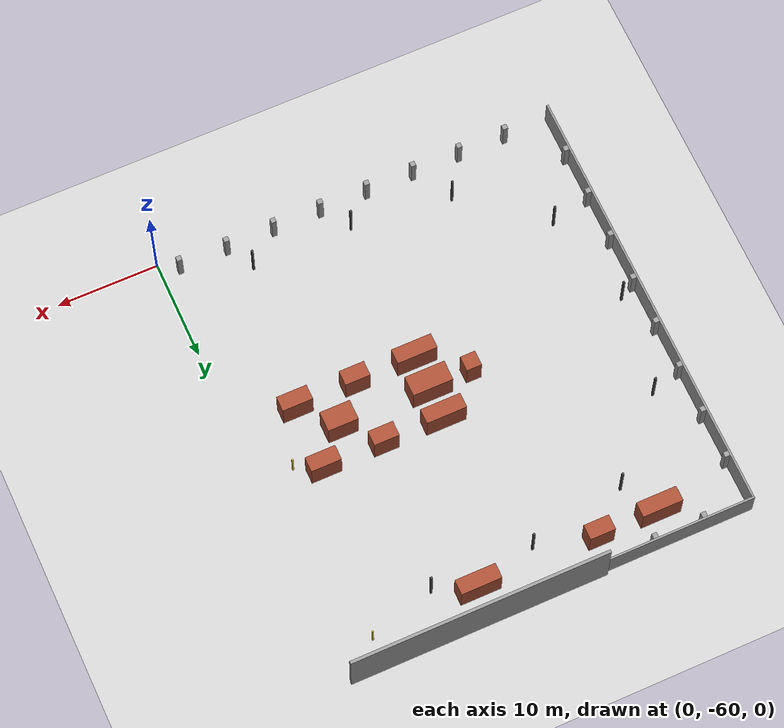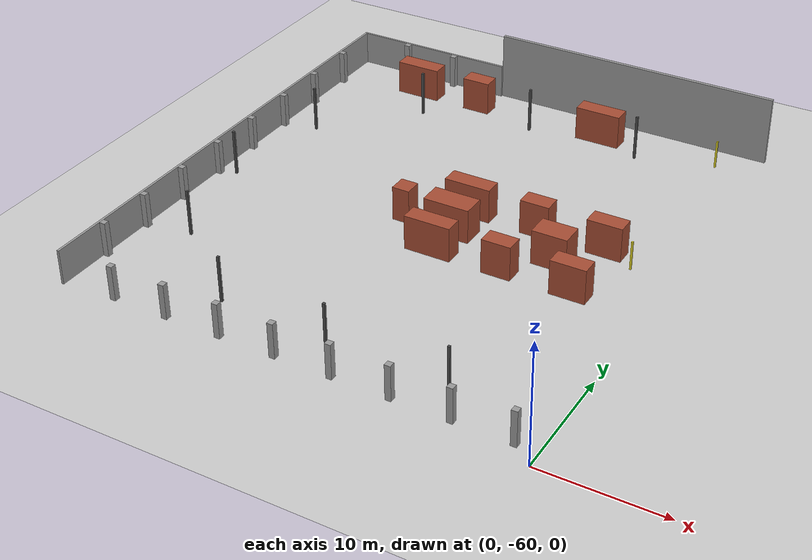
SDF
<sdf version="1.6">
 <world name="default">
  <include><uri>model://ground_plane</uri></include>
  <include><uri>model://sun</uri></include>
  <model name="wall_s_0">
   <static>true</static>
   <pose>-12.6500 -15.1500 3.0000 0.000000 0.000000 0.000000</pose>
   <link name="link">
    <collision name="c"><geometry><box><size>25.3000 0.3000 6.0000</size></box></geometry></collision>
    <visual name="v">
     <geometry><box><size>25.3000 0.3000 6.0000</size></box></geometry>
     <material>
      <script><uri>file://media/materials/scripts/gazebo.material</uri><name>Gazebo/Grey</name></script>
     </material>
    </visual>
   </link>
  </model>
  <model name="fence_w">
   <static>true</static>
   <pose>-39.9000 -37.1500 1.5000 0.000000 0.000000 0.000000</pose>
   <link name="link">
    <collision name="c"><geometry><box><size>0.2000 43.7000 3.0000</size></box></geometry></collision>
    <visual name="v">
     <geometry><box><size>0.2000 43.7000 3.0000</size></box></geometry>
     <material>
      <script><uri>file://media/materials/scripts/gazebo.material</uri><name>Gazebo/Grey</name></script>
     </material>
    </visual>
   </link>
  </model>
  <model name="fence_n_w">
   <static>true</static>
   <pose>-32.6500 -15.4000 1.5000 0.000000 0.000000 0.000000</pose>
   <link name="link">
    <collision name="c"><geometry><box><size>14.7000 0.2000 3.0000</size></box></geometry></collision>
    <visual name="v">
     <geometry><box><size>14.7000 0.2000 3.0000</size></box></geometry>
     <material>
      <script><uri>file://media/materials/scripts/gazebo.material</uri><name>Gazebo/Grey</name></script>
     </material>
    </visual>
   </link>
  </model>
  <model name="fence_post_0">
   <static>true</static>
   <pose>-35.2222 -58.5500 1.5000 0.000000 0.000000 0.000000</pose>
   <link name="link">
    <collision name="c"><geometry><box><size>0.5000 0.5000 3.0000</size></box></geometry></collision>
    <visual name="v">
     <geometry><box><size>0.5000 0.5000 3.0000</size></box></geometry>
     <material>
      <script><uri>file://media/materials/scripts/gazebo.material</uri><name>Gazebo/Grey</name></script>
     </material>
    </visual>
   </link>
  </model>
  <model name="fence_post_1">
   <static>true</static>
   <pose>-30.4444 -58.5500 1.5000 0.000000 0.000000 0.000000</pose>
   <link name="link">
    <collision name="c"><geometry><box><size>0.5000 0.5000 3.0000</size></box></geometry></collision>
    <visual name="v">
     <geometry><box><size>0.5000 0.5000 3.0000</size></box></geometry>
     <material>
      <script><uri>file://media/materials/scripts/gazebo.material</uri><name>Gazebo/Grey</name></script>
     </material>
    </visual>
   </link>
  </model>
  <model name="fence_post_2">
   <static>true</static>
   <pose>-25.6667 -58.5500 1.5000 0.000000 0.000000 0.000000</pose>
   <link name="link">
    <collision name="c"><geometry><box><size>0.5000 0.5000 3.0000</size></box></geometry></collision>
    <visual name="v">
     <geometry><box><size>0.5000 0.5000 3.0000</size></box></geometry>
     <material>
      <script><uri>file://media/materials/scripts/gazebo.material</uri><name>Gazebo/Grey</name></script>
     </material>
    </visual>
   </link>
  </model>
  <model name="fence_post_3">
   <static>true</static>
   <pose>-20.8889 -58.5500 1.5000 0.000000 0.000000 0.000000</pose>
   <link name="link">
    <collision name="c"><geometry><box><size>0.5000 0.5000 3.0000</size></box></geometry></collision>
    <visual name="v">
     <geometry><box><size>0.5000 0.5000 3.0000</size></box></geometry>
     <material>
      <script><uri>file://media/materials/scripts/gazebo.material</uri><name>Gazebo/Grey</name></script>
     </material>
    </visual>
   </link>
  </model>
  <model name="fence_post_4">
   <static>true</static>
   <pose>-16.1111 -58.5500 1.5000 0.000000 0.000000 0.000000</pose>
   <link name="link">
    <collision name="c"><geometry><box><size>0.5000 0.5000 3.0000</size></box></geometry></collision>
    <visual name="v">
     <geometry><box><size>0.5000 0.5000 3.0000</size></box></geometry>
     <material>
      <script><uri>file://media/materials/scripts/gazebo.material</uri><name>Gazebo/Grey</name></script>
     </material>
    </visual>
   </link>
  </model>
  <model name="fence_post_5">
   <static>true</static>
   <pose>-11.3333 -58.5500 1.5000 0.000000 0.000000 0.000000</pose>
   <link name="link">
    <collision name="c"><geometry><box><size>0.5000 0.5000 3.0000</size></box></geometry></collision>
    <visual name="v">
     <geometry><box><size>0.5000 0.5000 3.0000</size></box></geometry>
     <material>
      <script><uri>file://media/materials/scripts/gazebo.material</uri><name>Gazebo/Grey</name></script>
     </material>
    </visual>
   </link>
  </model>
  <model name="fence_post_6">
   <static>true</static>
   <pose>-6.5556 -58.5500 1.5000 0.000000 0.000000 0.000000</pose>
   <link name="link">
    <collision name="c"><geometry><box><size>0.5000 0.5000 3.0000</size></box></geometry></collision>
    <visual name="v">
     <geometry><box><size>0.5000 0.5000 3.0000</size></box></geometry>
     <material>
      <script><uri>file://media/materials/scripts/gazebo.material</uri><name>Gazebo/Grey</name></script>
     </material>
    </visual>
   </link>
  </model>
  <model name="fence_post_7">
   <static>true</static>
   <pose>-1.7778 -58.5500 1.5000 0.000000 0.000000 0.000000</pose>
   <link name="link">
    <collision name="c"><geometry><box><size>0.5000 0.5000 3.0000</size></box></geometry></collision>
    <visual name="v">
     <geometry><box><size>0.5000 0.5000 3.0000</size></box></geometry>
     <material>
      <script><uri>file://media/materials/scripts/gazebo.material</uri><name>Gazebo/Grey</name></script>
     </material>
    </visual>
   </link>
  </model>
  <model name="fence_post_17">
   <static>true</static>
   <pose>-39.5500 -54.1444 1.5000 0.000000 0.000000 0.000000</pose>
   <link name="link">
    <collision name="c"><geometry><box><size>0.5000 0.5000 3.0000</size></box></geometry></collision>
    <visual name="v">
     <geometry><box><size>0.5000 0.5000 3.0000</size></box></geometry>
     <material>
      <script><uri>file://media/materials/scripts/gazebo.material</uri><name>Gazebo/Grey</name></script>
     </material>
    </visual>
   </link>
  </model>
  <model name="fence_post_18">
   <static>true</static>
   <pose>-39.5500 -49.2889 1.5000 0.000000 0.000000 0.000000</pose>
   <link name="link">
    <collision name="c"><geometry><box><size>0.5000 0.5000 3.0000</size></box></geometry></collision>
    <visual name="v">
     <geometry><box><size>0.5000 0.5000 3.0000</size></box></geometry>
     <material>
      <script><uri>file://media/materials/scripts/gazebo.material</uri><name>Gazebo/Grey</name></script>
     </material>
    </visual>
   </link>
  </model>
  <model name="fence_post_19">
   <static>true</static>
   <pose>-39.5500 -44.4333 1.5000 0.000000 0.000000 0.000000</pose>
   <link name="link">
    <collision name="c"><geometry><box><size>0.5000 0.5000 3.0000</size></box></geometry></collision>
    <visual name="v">
     <geometry><box><size>0.5000 0.5000 3.0000</size></box></geometry>
     <material>
      <script><uri>file://media/materials/scripts/gazebo.material</uri><name>Gazebo/Grey</name></script>
     </material>
    </visual>
   </link>
  </model>
  <model name="fence_post_20">
   <static>true</static>
   <pose>-39.5500 -39.5778 1.5000 0.000000 0.000000 0.000000</pose>
   <link name="link">
    <collision name="c"><geometry><box><size>0.5000 0.5000 3.0000</size></box></geometry></collision>
    <visual name="v">
     <geometry><box><size>0.5000 0.5000 3.0000</size></box></geometry>
     <material>
      <script><uri>file://media/materials/scripts/gazebo.material</uri><name>Gazebo/Grey</name></script>
     </material>
    </visual>
   </link>
  </model>
  <model name="fence_post_21">
   <static>true</static>
   <pose>-39.5500 -34.7222 1.5000 0.000000 0.000000 0.000000</pose>
   <link name="link">
    <collision name="c"><geometry><box><size>0.5000 0.5000 3.0000</size></box></geometry></collision>
    <visual name="v">
     <geometry><box><size>0.5000 0.5000 3.0000</size></box></geometry>
     <material>
      <script><uri>file://media/materials/scripts/gazebo.material</uri><name>Gazebo/Grey</name></script>
     </material>
    </visual>
   </link>
  </model>
  <model name="fence_post_22">
   <static>true</static>
   <pose>-39.5500 -29.8667 1.5000 0.000000 0.000000 0.000000</pose>
   <link name="link">
    <collision name="c"><geometry><box><size>0.5000 0.5000 3.0000</size></box></geometry></collision>
    <visual name="v">
     <geometry><box><size>0.5000 0.5000 3.0000</size></box></geometry>
     <material>
      <script><uri>file://media/materials/scripts/gazebo.material</uri><name>Gazebo/Grey</name></script>
     </material>
    </visual>
   </link>
  </model>
  <model name="fence_post_23">
   <static>true</static>
   <pose>-39.5500 -25.0111 1.5000 0.000000 0.000000 0.000000</pose>
   <link name="link">
    <collision name="c"><geometry><box><size>0.5000 0.5000 3.0000</size></box></geometry></collision>
    <visual name="v">
     <geometry><box><size>0.5000 0.5000 3.0000</size></box></geometry>
     <material>
      <script><uri>file://media/materials/scripts/gazebo.material</uri><name>Gazebo/Grey</name></script>
     </material>
    </visual>
   </link>
  </model>
  <model name="fence_post_24">
   <static>true</static>
   <pose>-39.5500 -20.1556 1.5000 0.000000 0.000000 0.000000</pose>
   <link name="link">
    <collision name="c"><geometry><box><size>0.5000 0.5000 3.0000</size></box></geometry></collision>
    <visual name="v">
     <geometry><box><size>0.5000 0.5000 3.0000</size></box></geometry>
     <material>
      <script><uri>file://media/materials/scripts/gazebo.material</uri><name>Gazebo/Grey</name></script>
     </material>
    </visual>
   </link>
  </model>
  <model name="fence_post_33">
   <static>true</static>
   <pose>-35.1000 -15.7500 1.5000 0.000000 0.000000 0.000000</pose>
   <link name="link">
    <collision name="c"><geometry><box><size>0.5000 0.5000 3.0000</size></box></geometry></collision>
    <visual name="v">
     <geometry><box><size>0.5000 0.5000 3.0000</size></box></geometry>
     <material>
      <script><uri>file://media/materials/scripts/gazebo.material</uri><name>Gazebo/Grey</name></script>
     </material>
    </visual>
   </link>
  </model>
  <model name="fence_post_34">
   <static>true</static>
   <pose>-30.2000 -15.7500 1.5000 0.000000 0.000000 0.000000</pose>
   <link name="link">
    <collision name="c"><geometry><box><size>0.5000 0.5000 3.0000</size></box></geometry></collision>
    <visual name="v">
     <geometry><box><size>0.5000 0.5000 3.0000</size></box></geometry>
     <material>
      <script><uri>file://media/materials/scripts/gazebo.material</uri><name>Gazebo/Grey</name></script>
     </material>
    </visual>
   </link>
  </model>
  <model name="lamp_9">
   <static>true</static>
   <pose>-8.1500 -56.0000 2.0000 0.000000 0.000000 0.000000</pose>
   <link name="link">
    <collision name="c"><geometry><box><size>0.2000 0.2000 4.0000</size></box></geometry></collision>
    <visual name="v">
     <geometry><box><size>0.2000 0.2000 4.0000</size></box></geometry>
     <material>
      <script><uri>file://media/materials/scripts/gazebo.material</uri><name>Gazebo/DarkGrey</name></script>
     </material>
    </visual>
   </link>
  </model>
  <model name="lamp_10">
   <static>true</static>
   <pose>-18.1500 -56.0000 2.0000 0.000000 0.000000 0.000000</pose>
   <link name="link">
    <collision name="c"><geometry><box><size>0.2000 0.2000 4.0000</size></box></geometry></collision>
    <visual name="v">
     <geometry><box><size>0.2000 0.2000 4.0000</size></box></geometry>
     <material>
      <script><uri>file://media/materials/scripts/gazebo.material</uri><name>Gazebo/DarkGrey</name></script>
     </material>
    </visual>
   </link>
  </model>
  <model name="lamp_11">
   <static>true</static>
   <pose>-28.0955 -54.8940 2.0000 0.000000 0.000000 0.000000</pose>
   <link name="link">
    <collision name="c"><geometry><box><size>0.2000 0.2000 4.0000</size></box></geometry></collision>
    <visual name="v">
     <geometry><box><size>0.2000 0.2000 4.0000</size></box></geometry>
     <material>
      <script><uri>file://media/materials/scripts/gazebo.material</uri><name>Gazebo/DarkGrey</name></script>
     </material>
    </visual>
   </link>
  </model>
  <model name="lamp_12">
   <static>true</static>
   <pose>-35.7443 -48.5968 2.0000 0.000000 0.000000 0.000000</pose>
   <link name="link">
    <collision name="c"><geometry><box><size>0.2000 0.2000 4.0000</size></box></geometry></collision>
    <visual name="v">
     <geometry><box><size>0.2000 0.2000 4.0000</size></box></geometry>
     <material>
      <script><uri>file://media/materials/scripts/gazebo.material</uri><name>Gazebo/DarkGrey</name></script>
     </material>
    </visual>
   </link>
  </model>
  <model name="lamp_13">
   <static>true</static>
   <pose>-38.2500 -39.0000 2.0000 0.000000 0.000000 0.000000</pose>
   <link name="link">
    <collision name="c"><geometry><box><size>0.2000 0.2000 4.0000</size></box></geometry></collision>
    <visual name="v">
     <geometry><box><size>0.2000 0.2000 4.0000</size></box></geometry>
     <material>
      <script><uri>file://media/materials/scripts/gazebo.material</uri><name>Gazebo/DarkGrey</name></script>
     </material>
    </visual>
   </link>
  </model>
  <model name="lamp_14">
   <static>true</static>
   <pose>-36.7085 -29.1479 2.0000 0.000000 0.000000 0.000000</pose>
   <link name="link">
    <collision name="c"><geometry><box><size>0.2000 0.2000 4.0000</size></box></geometry></collision>
    <visual name="v">
     <geometry><box><size>0.2000 0.2000 4.0000</size></box></geometry>
     <material>
      <script><uri>file://media/materials/scripts/gazebo.material</uri><name>Gazebo/DarkGrey</name></script>
     </material>
    </visual>
   </link>
  </model>
  <model name="lamp_15">
   <static>true</static>
   <pose>-29.9021 -21.9485 2.0000 0.000000 0.000000 0.000000</pose>
   <link name="link">
    <collision name="c"><geometry><box><size>0.2000 0.2000 4.0000</size></box></geometry></collision>
    <visual name="v">
     <geometry><box><size>0.2000 0.2000 4.0000</size></box></geometry>
     <material>
      <script><uri>file://media/materials/scripts/gazebo.material</uri><name>Gazebo/DarkGrey</name></script>
     </material>
    </visual>
   </link>
  </model>
  <model name="lamp_16">
   <static>true</static>
   <pose>-20.1500 -20.0000 2.0000 0.000000 0.000000 0.000000</pose>
   <link name="link">
    <collision name="c"><geometry><box><size>0.2000 0.2000 4.0000</size></box></geometry></collision>
    <visual name="v">
     <geometry><box><size>0.2000 0.2000 4.0000</size></box></geometry>
     <material>
      <script><uri>file://media/materials/scripts/gazebo.material</uri><name>Gazebo/DarkGrey</name></script>
     </material>
    </visual>
   </link>
  </model>
  <model name="lamp_17">
   <static>true</static>
   <pose>-10.0500 -20.0000 2.0000 0.000000 0.000000 0.000000</pose>
   <link name="link">
    <collision name="c"><geometry><box><size>0.2000 0.2000 4.0000</size></box></geometry></collision>
    <visual name="v">
     <geometry><box><size>0.2000 0.2000 4.0000</size></box></geometry>
     <material>
      <script><uri>file://media/materials/scripts/gazebo.material</uri><name>Gazebo/DarkGrey</name></script>
     </material>
    </visual>
   </link>
  </model>
  <model name="signal_1">
   <static>true</static>
   <pose>-3.4500 -18.0500 1.2500 0.000000 0.000000 0.000000</pose>
   <link name="link">
    <collision name="c"><geometry><box><size>0.1500 0.1500 2.5000</size></box></geometry></collision>
    <visual name="v">
     <geometry><box><size>0.1500 0.1500 2.5000</size></box></geometry>
     <material>
      <script><uri>file://media/materials/scripts/gazebo.material</uri><name>Gazebo/Yellow</name></script>
     </material>
    </visual>
   </link>
  </model>
  <model name="signal_2">
   <static>true</static>
   <pose>-3.4500 -35.9500 1.2500 0.000000 0.000000 0.000000</pose>
   <link name="link">
    <collision name="c"><geometry><box><size>0.1500 0.1500 2.5000</size></box></geometry></collision>
    <visual name="v">
     <geometry><box><size>0.1500 0.1500 2.5000</size></box></geometry>
     <material>
      <script><uri>file://media/materials/scripts/gazebo.material</uri><name>Gazebo/Yellow</name></script>
     </material>
    </visual>
   </link>
  </model>
  <model name="building_0">
   <static>true</static>
   <pose>-22.2500 -38.0000 1.5000 0.000000 0.000000 0.000000</pose>
   <link name="link">
    <collision name="c"><geometry><box><size>1.5000 1.5000 3.0000</size></box></geometry></collision>
    <visual name="v">
     <geometry><box><size>1.5000 1.5000 3.0000</size></box></geometry>
     <material>
      <script><uri>file://media/materials/scripts/gazebo.material</uri><name>Gazebo/Bricks</name></script>
     </material>
    </visual>
   </link>
  </model>
  <model name="building_1">
   <static>true</static>
   <pose>-18.0000 -38.0000 1.5000 0.000000 0.000000 0.000000</pose>
   <link name="link">
    <collision name="c"><geometry><box><size>4.0000 2.0000 3.0000</size></box></geometry></collision>
    <visual name="v">
     <geometry><box><size>4.0000 2.0000 3.0000</size></box></geometry>
     <material>
      <script><uri>file://media/materials/scripts/gazebo.material</uri><name>Gazebo/Bricks</name></script>
     </material>
    </visual>
   </link>
  </model>
  <model name="building_2">
   <static>true</static>
   <pose>-9.0000 -38.0000 1.5000 0.000000 0.000000 0.000000</pose>
   <link name="link">
    <collision name="c"><geometry><box><size>3.0000 2.0000 3.0000</size></box></geometry></collision>
    <visual name="v">
     <geometry><box><size>3.0000 2.0000 3.0000</size></box></geometry>
     <material>
      <script><uri>file://media/materials/scripts/gazebo.material</uri><name>Gazebo/Bricks</name></script>
     </material>
    </visual>
   </link>
  </model>
  <model name="building_6">
   <static>true</static>
   <pose>-18.0000 -34.7500 1.5000 0.000000 0.000000 0.000000</pose>
   <link name="link">
    <collision name="c"><geometry><box><size>4.0000 1.5000 3.0000</size></box></geometry></collision>
    <visual name="v">
     <geometry><box><size>4.0000 1.5000 3.0000</size></box></geometry>
     <material>
      <script><uri>file://media/materials/scripts/gazebo.material</uri><name>Gazebo/Bricks</name></script>
     </material>
    </visual>
   </link>
  </model>
  <model name="building_7">
   <static>true</static>
   <pose>-12.0000 -34.7500 1.5000 0.000000 0.000000 0.000000</pose>
   <link name="link">
    <collision name="c"><geometry><box><size>2.5000 1.5000 3.0000</size></box></geometry></collision>
    <visual name="v">
     <geometry><box><size>2.5000 1.5000 3.0000</size></box></geometry>
     <material>
      <script><uri>file://media/materials/scripts/gazebo.material</uri><name>Gazebo/Bricks</name></script>
     </material>
    </visual>
   </link>
  </model>
  <model name="building_8">
   <static>true</static>
   <pose>-6.0000 -34.7500 1.5000 0.000000 0.000000 0.000000</pose>
   <link name="link">
    <collision name="c"><geometry><box><size>3.0000 1.5000 3.0000</size></box></geometry></collision>
    <visual name="v">
     <geometry><box><size>3.0000 1.5000 3.0000</size></box></geometry>
     <material>
      <script><uri>file://media/materials/scripts/gazebo.material</uri><name>Gazebo/Bricks</name></script>
     </material>
    </visual>
   </link>
  </model>
  <model name="building_12">
   <static>true</static>
   <pose>-18.0000 -41.2500 1.5000 0.000000 0.000000 0.000000</pose>
   <link name="link">
    <collision name="c"><geometry><box><size>4.0000 1.5000 3.0000</size></box></geometry></collision>
    <visual name="v">
     <geometry><box><size>4.0000 1.5000 3.0000</size></box></geometry>
     <material>
      <script><uri>file://media/materials/scripts/gazebo.material</uri><name>Gazebo/Bricks</name></script>
     </material>
    </visual>
   </link>
  </model>
  <model name="building_13">
   <static>true</static>
   <pose>-12.0000 -41.2500 1.5000 0.000000 0.000000 0.000000</pose>
   <link name="link">
    <collision name="c"><geometry><box><size>2.5000 1.5000 3.0000</size></box></geometry></collision>
    <visual name="v">
     <geometry><box><size>2.5000 1.5000 3.0000</size></box></geometry>
     <material>
      <script><uri>file://media/materials/scripts/gazebo.material</uri><name>Gazebo/Bricks</name></script>
     </material>
    </visual>
   </link>
  </model>
  <model name="building_14">
   <static>true</static>
   <pose>-6.0000 -41.2500 1.5000 0.000000 0.000000 0.000000</pose>
   <link name="link">
    <collision name="c"><geometry><box><size>3.0000 1.5000 3.0000</size></box></geometry></collision>
    <visual name="v">
     <geometry><box><size>3.0000 1.5000 3.0000</size></box></geometry>
     <material>
      <script><uri>file://media/materials/scripts/gazebo.material</uri><name>Gazebo/Bricks</name></script>
     </material>
    </visual>
   </link>
  </model>
  <model name="building_18">
   <static>true</static>
   <pose>-32.0000 -18.5000 1.5000 0.000000 0.000000 0.000000</pose>
   <link name="link">
    <collision name="c"><geometry><box><size>4.0000 1.5000 3.0000</size></box></geometry></collision>
    <visual name="v">
     <geometry><box><size>4.0000 1.5000 3.0000</size></box></geometry>
     <material>
      <script><uri>file://media/materials/scripts/gazebo.material</uri><name>Gazebo/Bricks</name></script>
     </material>
    </visual>
   </link>
  </model>
  <model name="building_19">
   <static>true</static>
   <pose>-26.0000 -18.5000 1.5000 0.000000 0.000000 0.000000</pose>
   <link name="link">
    <collision name="c"><geometry><box><size>2.5000 1.5000 3.0000</size></box></geometry></collision>
    <visual name="v">
     <geometry><box><size>2.5000 1.5000 3.0000</size></box></geometry>
     <material>
      <script><uri>file://media/materials/scripts/gazebo.material</uri><name>Gazebo/Bricks</name></script>
     </material>
    </visual>
   </link>
  </model>
  <model name="building_20">
   <static>true</static>
   <pose>-14.0000 -18.5000 1.5000 0.000000 0.000000 0.000000</pose>
   <link name="link">
    <collision name="c"><geometry><box><size>4.0000 1.5000 3.0000</size></box></geometry></collision>
    <visual name="v">
     <geometry><box><size>4.0000 1.5000 3.0000</size></box></geometry>
     <material>
      <script><uri>file://media/materials/scripts/gazebo.material</uri><name>Gazebo/Bricks</name></script>
     </material>
    </visual>
   </link>
  </model>
 </world>
</sdf>
